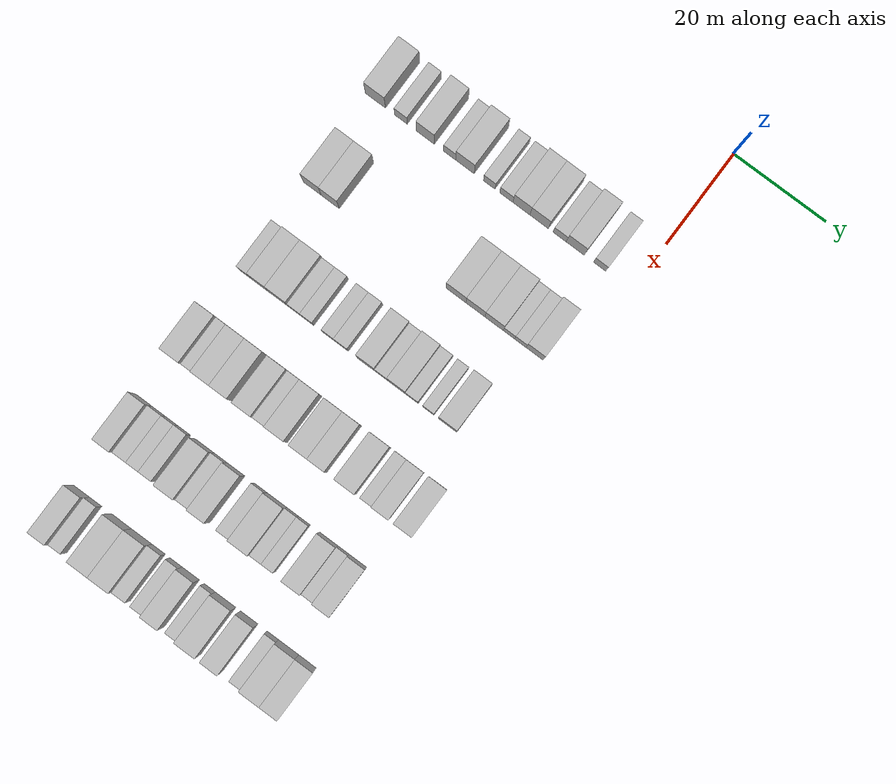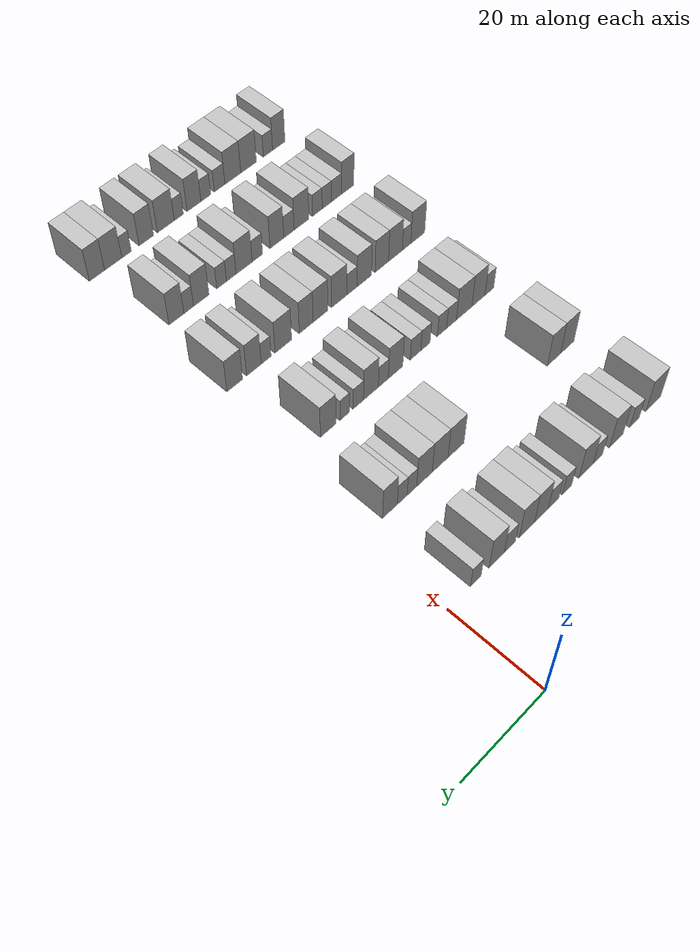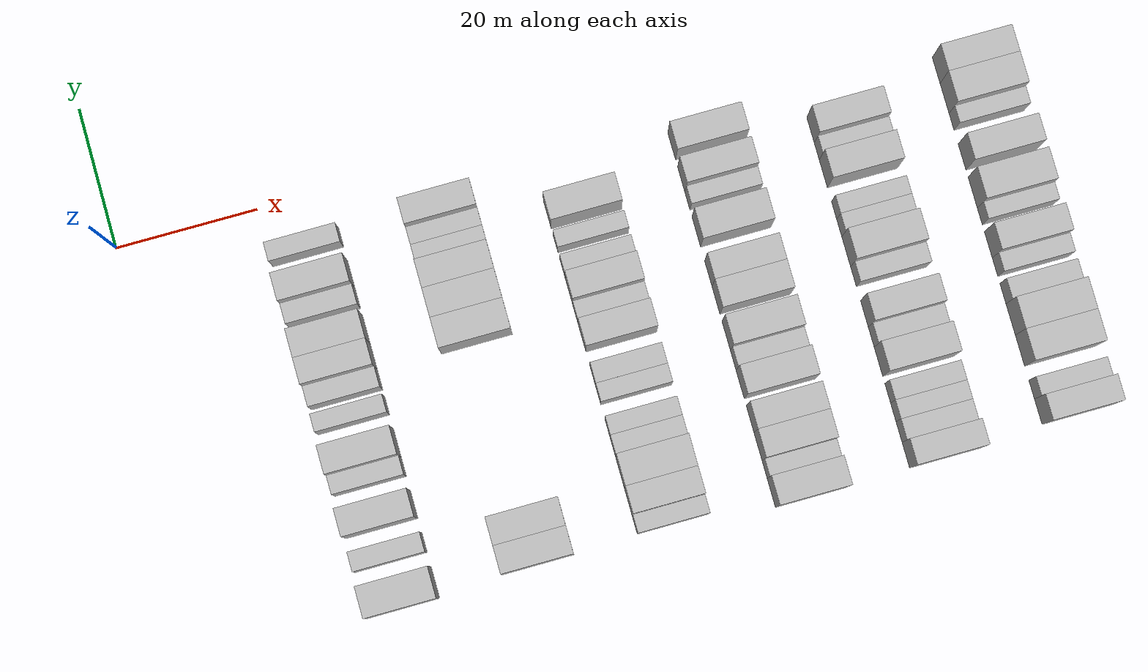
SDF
<sdf version="1.6">
 <world name="default">
  <model name="building_68">
   <static>1</static>
   <pose>25.0000 -55.7402 0 0.000000 0.000000 0.000000</pose>
   <link name="link">
    <pose>0 0 4.50 0 0 0</pose>
    <collision name="collision"><geometry><box><size>10.0000 4.4121 9.0000</size></box></geometry></collision>
    <visual name="visual">
     <cast_shadows>0</cast_shadows>
     <geometry><box><size>10.0000 4.4121 9.0000</size></box></geometry>
     <material>
      <script>
       <uri>model://HANNAS_wall/materials/scripts</uri>
       <uri>model://HANNAS_wall/materials/textures</uri>
       <name>vrc/HANNAS_wall</name>
      </script>
     </material>
    </visual>
   </link>
  </model>
  <model name="building_69">
   <static>1</static>
   <pose>25.0000 -50.1586 0 0.000000 0.000000 0.000000</pose>
   <link name="link">
    <pose>0 0 3.00 0 0 0</pose>
    <collision name="collision"><geometry><box><size>10.0000 2.7511 6.0000</size></box></geometry></collision>
    <visual name="visual">
     <cast_shadows>0</cast_shadows>
     <geometry><box><size>10.0000 2.7511 6.0000</size></box></geometry>
     <material>
      <script>
       <uri>model://HANNAS_wall/materials/scripts</uri>
       <uri>model://HANNAS_wall/materials/textures</uri>
       <name>vrc/HANNAS_wall</name>
      </script>
     </material>
    </visual>
   </link>
  </model>
  <model name="building_70">
   <static>1</static>
   <pose>25.0000 -44.8256 0 0.000000 0.000000 0.000000</pose>
   <link name="link">
    <pose>0 0 4.50 0 0 0</pose>
    <collision name="collision"><geometry><box><size>10.0000 3.9150 9.0000</size></box></geometry></collision>
    <visual name="visual">
     <cast_shadows>0</cast_shadows>
     <geometry><box><size>10.0000 3.9150 9.0000</size></box></geometry>
     <material>
      <script>
       <uri>model://HANNAS_wall/materials/scripts</uri>
       <uri>model://HANNAS_wall/materials/textures</uri>
       <name>vrc/HANNAS_wall</name>
      </script>
     </material>
    </visual>
   </link>
  </model>
  <model name="building_71">
   <static>1</static>
   <pose>25.0000 -39.5345 0 0.000000 0.000000 0.000000</pose>
   <link name="link">
    <pose>0 0 3.00 0 0 0</pose>
    <collision name="collision"><geometry><box><size>10.0000 2.6671 6.0000</size></box></geometry></collision>
    <visual name="visual">
     <cast_shadows>0</cast_shadows>
     <geometry><box><size>10.0000 2.6671 6.0000</size></box></geometry>
     <material>
      <script>
       <uri>model://HANNAS_wall/materials/scripts</uri>
       <uri>model://HANNAS_wall/materials/textures</uri>
       <name>vrc/HANNAS_wall</name>
      </script>
     </material>
    </visual>
   </link>
  </model>
  <model name="building_72">
   <static>1</static>
   <pose>25.0000 -36.1994 0 0.000000 0.000000 0.000000</pose>
   <link name="link">
    <pose>0 0 4.50 0 0 0</pose>
    <collision name="collision"><geometry><box><size>10.0000 4.0033 9.0000</size></box></geometry></collision>
    <visual name="visual">
     <cast_shadows>0</cast_shadows>
     <geometry><box><size>10.0000 4.0033 9.0000</size></box></geometry>
     <material>
      <script>
       <uri>model://HANNAS_wall/materials/scripts</uri>
       <uri>model://HANNAS_wall/materials/textures</uri>
       <name>vrc/HANNAS_wall</name>
      </script>
     </material>
    </visual>
   </link>
  </model>
  <model name="building_73">
   <static>1</static>
   <pose>25.0000 -30.9339 0 0.000000 0.000000 0.000000</pose>
   <link name="link">
    <pose>0 0 3.00 0 0 0</pose>
    <collision name="collision"><geometry><box><size>10.0000 2.5276 6.0000</size></box></geometry></collision>
    <visual name="visual">
     <cast_shadows>0</cast_shadows>
     <geometry><box><size>10.0000 2.5276 6.0000</size></box></geometry>
     <material>
      <script>
       <uri>model://HANNAS_wall/materials/scripts</uri>
       <uri>model://HANNAS_wall/materials/textures</uri>
       <name>vrc/HANNAS_wall</name>
      </script>
     </material>
    </visual>
   </link>
  </model>
  <model name="building_74">
   <static>1</static>
   <pose>25.0000 -27.2278 0 0.000000 0.000000 0.000000</pose>
   <link name="link">
    <pose>0 0 3.00 0 0 0</pose>
    <collision name="collision"><geometry><box><size>10.0000 2.8847 6.0000</size></box></geometry></collision>
    <visual name="visual">
     <cast_shadows>0</cast_shadows>
     <geometry><box><size>10.0000 2.8847 6.0000</size></box></geometry>
     <material>
      <script>
       <uri>model://HANNAS_wall/materials/scripts</uri>
       <uri>model://HANNAS_wall/materials/textures</uri>
       <name>vrc/HANNAS_wall</name>
      </script>
     </material>
    </visual>
   </link>
  </model>
  <model name="building_75">
   <static>1</static>
   <pose>25.0000 -23.9499 0 0.000000 0.000000 0.000000</pose>
   <link name="link">
    <pose>0 0 4.50 0 0 0</pose>
    <collision name="collision"><geometry><box><size>10.0000 3.6709 9.0000</size></box></geometry></collision>
    <visual name="visual">
     <cast_shadows>0</cast_shadows>
     <geometry><box><size>10.0000 3.6709 9.0000</size></box></geometry>
     <material>
      <script>
       <uri>model://HANNAS_wall/materials/scripts</uri>
       <uri>model://HANNAS_wall/materials/textures</uri>
       <name>vrc/HANNAS_wall</name>
      </script>
     </material>
    </visual>
   </link>
  </model>
  <model name="building_76">
   <static>1</static>
   <pose>25.0000 -20.0988 0 0.000000 0.000000 0.000000</pose>
   <link name="link">
    <pose>0 0 4.50 0 0 0</pose>
    <collision name="collision"><geometry><box><size>10.0000 4.0313 9.0000</size></box></geometry></collision>
    <visual name="visual">
     <cast_shadows>0</cast_shadows>
     <geometry><box><size>10.0000 4.0313 9.0000</size></box></geometry>
     <material>
      <script>
       <uri>model://HANNAS_wall/materials/scripts</uri>
       <uri>model://HANNAS_wall/materials/textures</uri>
       <name>vrc/HANNAS_wall</name>
      </script>
     </material>
    </visual>
   </link>
  </model>
  <model name="building_77">
   <static>1</static>
   <pose>25.0000 -15.6472 0 0.000000 0.000000 0.000000</pose>
   <link name="link">
    <pose>0 0 3.00 0 0 0</pose>
    <collision name="collision"><geometry><box><size>10.0000 2.8719 6.0000</size></box></geometry></collision>
    <visual name="visual">
     <cast_shadows>0</cast_shadows>
     <geometry><box><size>10.0000 2.8719 6.0000</size></box></geometry>
     <material>
      <script>
       <uri>model://HANNAS_wall/materials/scripts</uri>
       <uri>model://HANNAS_wall/materials/textures</uri>
       <name>vrc/HANNAS_wall</name>
      </script>
     </material>
    </visual>
   </link>
  </model>
  <model name="building_78">
   <static>1</static>
   <pose>25.0000 -12.2532 0 0.000000 0.000000 0.000000</pose>
   <link name="link">
    <pose>0 0 4.50 0 0 0</pose>
    <collision name="collision"><geometry><box><size>10.0000 3.9162 9.0000</size></box></geometry></collision>
    <visual name="visual">
     <cast_shadows>0</cast_shadows>
     <geometry><box><size>10.0000 3.9162 9.0000</size></box></geometry>
     <material>
      <script>
       <uri>model://HANNAS_wall/materials/scripts</uri>
       <uri>model://HANNAS_wall/materials/textures</uri>
       <name>vrc/HANNAS_wall</name>
      </script>
     </material>
    </visual>
   </link>
  </model>
  <model name="building_79">
   <static>1</static>
   <pose>25.0000 -6.9592 0 0.000000 0.000000 0.000000</pose>
   <link name="link">
    <pose>0 0 3.00 0 0 0</pose>
    <collision name="collision"><geometry><box><size>10.0000 2.6719 6.0000</size></box></geometry></collision>
    <visual name="visual">
     <cast_shadows>0</cast_shadows>
     <geometry><box><size>10.0000 2.6719 6.0000</size></box></geometry>
     <material>
      <script>
       <uri>model://HANNAS_wall/materials/scripts</uri>
       <uri>model://HANNAS_wall/materials/textures</uri>
       <name>vrc/HANNAS_wall</name>
      </script>
     </material>
    </visual>
   </link>
  </model>
  <model name="building_232">
   <static>1</static>
   <pose>44.0000 -55.2480 0 0.000000 0.000000 0.000000</pose>
   <link name="link">
    <pose>0 0 4.50 0 0 0</pose>
    <collision name="collision"><geometry><box><size>10.0000 3.9118 9.0000</size></box></geometry></collision>
    <visual name="visual">
     <cast_shadows>0</cast_shadows>
     <geometry><box><size>10.0000 3.9118 9.0000</size></box></geometry>
     <material>
      <script>
       <uri>model://HANNAS_wall/materials/scripts</uri>
       <uri>model://HANNAS_wall/materials/textures</uri>
       <name>vrc/HANNAS_wall</name>
      </script>
     </material>
    </visual>
   </link>
  </model>
  <model name="building_233">
   <static>1</static>
   <pose>44.0000 -51.3264 0 0.000000 0.000000 0.000000</pose>
   <link name="link">
    <pose>0 0 4.50 0 0 0</pose>
    <collision name="collision"><geometry><box><size>10.0000 3.9314 9.0000</size></box></geometry></collision>
    <visual name="visual">
     <cast_shadows>0</cast_shadows>
     <geometry><box><size>10.0000 3.9314 9.0000</size></box></geometry>
     <material>
      <script>
       <uri>model://HANNAS_wall/materials/scripts</uri>
       <uri>model://HANNAS_wall/materials/textures</uri>
       <name>vrc/HANNAS_wall</name>
      </script>
     </material>
    </visual>
   </link>
  </model>
  <model name="building_234">
   <static>1</static>
   <pose>44.0000 -23.9639 0 0.000000 0.000000 0.000000</pose>
   <link name="link">
    <pose>0 0 4.50 0 0 0</pose>
    <collision name="collision"><geometry><box><size>10.0000 4.2645 9.0000</size></box></geometry></collision>
    <visual name="visual">
     <cast_shadows>0</cast_shadows>
     <geometry><box><size>10.0000 4.2645 9.0000</size></box></geometry>
     <material>
      <script>
       <uri>model://HANNAS_wall/materials/scripts</uri>
       <uri>model://HANNAS_wall/materials/textures</uri>
       <name>vrc/HANNAS_wall</name>
      </script>
     </material>
    </visual>
   </link>
  </model>
  <model name="building_235">
   <static>1</static>
   <pose>44.0000 -19.7783 0 0.000000 0.000000 0.000000</pose>
   <link name="link">
    <pose>0 0 4.50 0 0 0</pose>
    <collision name="collision"><geometry><box><size>10.0000 4.1068 9.0000</size></box></geometry></collision>
    <visual name="visual">
     <cast_shadows>0</cast_shadows>
     <geometry><box><size>10.0000 4.1068 9.0000</size></box></geometry>
     <material>
      <script>
       <uri>model://HANNAS_wall/materials/scripts</uri>
       <uri>model://HANNAS_wall/materials/textures</uri>
       <name>vrc/HANNAS_wall</name>
      </script>
     </material>
    </visual>
   </link>
  </model>
  <model name="building_236">
   <static>1</static>
   <pose>44.0000 -15.7215 0 0.000000 0.000000 0.000000</pose>
   <link name="link">
    <pose>0 0 4.50 0 0 0</pose>
    <collision name="collision"><geometry><box><size>10.0000 4.0069 9.0000</size></box></geometry></collision>
    <visual name="visual">
     <cast_shadows>0</cast_shadows>
     <geometry><box><size>10.0000 4.0069 9.0000</size></box></geometry>
     <material>
      <script>
       <uri>model://HANNAS_wall/materials/scripts</uri>
       <uri>model://HANNAS_wall/materials/textures</uri>
       <name>vrc/HANNAS_wall</name>
      </script>
     </material>
    </visual>
   </link>
  </model>
  <model name="building_237">
   <static>1</static>
   <pose>44.0000 -12.4966 0 0.000000 0.000000 0.000000</pose>
   <link name="link">
    <pose>0 0 3.00 0 0 0</pose>
    <collision name="collision"><geometry><box><size>10.0000 2.4429 6.0000</size></box></geometry></collision>
    <visual name="visual">
     <cast_shadows>0</cast_shadows>
     <geometry><box><size>10.0000 2.4429 6.0000</size></box></geometry>
     <material>
      <script>
       <uri>model://HANNAS_wall/materials/scripts</uri>
       <uri>model://HANNAS_wall/materials/textures</uri>
       <name>vrc/HANNAS_wall</name>
      </script>
     </material>
    </visual>
   </link>
  </model>
  <model name="building_238">
   <static>1</static>
   <pose>44.0000 -10.0319 0 0.000000 0.000000 0.000000</pose>
   <link name="link">
    <pose>0 0 3.00 0 0 0</pose>
    <collision name="collision"><geometry><box><size>10.0000 2.4865 6.0000</size></box></geometry></collision>
    <visual name="visual">
     <cast_shadows>0</cast_shadows>
     <geometry><box><size>10.0000 2.4865 6.0000</size></box></geometry>
     <material>
      <script>
       <uri>model://HANNAS_wall/materials/scripts</uri>
       <uri>model://HANNAS_wall/materials/textures</uri>
       <name>vrc/HANNAS_wall</name>
      </script>
     </material>
    </visual>
   </link>
  </model>
  <model name="building_239">
   <static>1</static>
   <pose>44.0000 -6.9526 0 0.000000 0.000000 0.000000</pose>
   <link name="link">
    <pose>0 0 4.50 0 0 0</pose>
    <collision name="collision"><geometry><box><size>10.0000 3.6723 9.0000</size></box></geometry></collision>
    <visual name="visual">
     <cast_shadows>0</cast_shadows>
     <geometry><box><size>10.0000 3.6723 9.0000</size></box></geometry>
     <material>
      <script>
       <uri>model://HANNAS_wall/materials/scripts</uri>
       <uri>model://HANNAS_wall/materials/textures</uri>
       <name>vrc/HANNAS_wall</name>
      </script>
     </material>
    </visual>
   </link>
  </model>
  <model name="building_401">
   <static>1</static>
   <pose>63.0000 -55.5531 0 0.000000 0.000000 0.000000</pose>
   <link name="link">
    <pose>0 0 3.00 0 0 0</pose>
    <collision name="collision"><geometry><box><size>10.0000 2.5824 6.0000</size></box></geometry></collision>
    <visual name="visual">
     <cast_shadows>0</cast_shadows>
     <geometry><box><size>10.0000 2.5824 6.0000</size></box></geometry>
     <material>
      <script>
       <uri>model://HANNAS_wall/materials/scripts</uri>
       <uri>model://HANNAS_wall/materials/textures</uri>
       <name>vrc/HANNAS_wall</name>
      </script>
     </material>
    </visual>
   </link>
  </model>
  <model name="building_402">
   <static>1</static>
   <pose>63.0000 -52.3521 0 0.000000 0.000000 0.000000</pose>
   <link name="link">
    <pose>0 0 4.50 0 0 0</pose>
    <collision name="collision"><geometry><box><size>10.0000 3.8197 9.0000</size></box></geometry></collision>
    <visual name="visual">
     <cast_shadows>0</cast_shadows>
     <geometry><box><size>10.0000 3.8197 9.0000</size></box></geometry>
     <material>
      <script>
       <uri>model://HANNAS_wall/materials/scripts</uri>
       <uri>model://HANNAS_wall/materials/textures</uri>
       <name>vrc/HANNAS_wall</name>
      </script>
     </material>
    </visual>
   </link>
  </model>
  <model name="building_403">
   <static>1</static>
   <pose>63.0000 -48.2206 0 0.000000 0.000000 0.000000</pose>
   <link name="link">
    <pose>0 0 4.50 0 0 0</pose>
    <collision name="collision"><geometry><box><size>10.0000 4.4433 9.0000</size></box></geometry></collision>
    <visual name="visual">
     <cast_shadows>0</cast_shadows>
     <geometry><box><size>10.0000 4.4433 9.0000</size></box></geometry>
     <material>
      <script>
       <uri>model://HANNAS_wall/materials/scripts</uri>
       <uri>model://HANNAS_wall/materials/textures</uri>
       <name>vrc/HANNAS_wall</name>
      </script>
     </material>
    </visual>
   </link>
  </model>
  <model name="building_404">
   <static>1</static>
   <pose>63.0000 -44.6166 0 0.000000 0.000000 0.000000</pose>
   <link name="link">
    <pose>0 0 3.00 0 0 0</pose>
    <collision name="collision"><geometry><box><size>10.0000 2.7647 6.0000</size></box></geometry></collision>
    <visual name="visual">
     <cast_shadows>0</cast_shadows>
     <geometry><box><size>10.0000 2.7647 6.0000</size></box></geometry>
     <material>
      <script>
       <uri>model://HANNAS_wall/materials/scripts</uri>
       <uri>model://HANNAS_wall/materials/textures</uri>
       <name>vrc/HANNAS_wall</name>
      </script>
     </material>
    </visual>
   </link>
  </model>
  <model name="building_405">
   <static>1</static>
   <pose>63.0000 -41.9248 0 0.000000 0.000000 0.000000</pose>
   <link name="link">
    <pose>0 0 3.00 0 0 0</pose>
    <collision name="collision"><geometry><box><size>10.0000 2.6190 6.0000</size></box></geometry></collision>
    <visual name="visual">
     <cast_shadows>0</cast_shadows>
     <geometry><box><size>10.0000 2.6190 6.0000</size></box></geometry>
     <material>
      <script>
       <uri>model://HANNAS_wall/materials/scripts</uri>
       <uri>model://HANNAS_wall/materials/textures</uri>
       <name>vrc/HANNAS_wall</name>
      </script>
     </material>
    </visual>
   </link>
  </model>
  <model name="building_406">
   <static>1</static>
   <pose>63.0000 -37.3234 0 0.000000 0.000000 0.000000</pose>
   <link name="link">
    <pose>0 0 3.00 0 0 0</pose>
    <collision name="collision"><geometry><box><size>10.0000 2.5839 6.0000</size></box></geometry></collision>
    <visual name="visual">
     <cast_shadows>0</cast_shadows>
     <geometry><box><size>10.0000 2.5839 6.0000</size></box></geometry>
     <material>
      <script>
       <uri>model://HANNAS_wall/materials/scripts</uri>
       <uri>model://HANNAS_wall/materials/textures</uri>
       <name>vrc/HANNAS_wall</name>
      </script>
     </material>
    </visual>
   </link>
  </model>
  <model name="building_407">
   <static>1</static>
   <pose>63.0000 -34.5744 0 0.000000 0.000000 0.000000</pose>
   <link name="link">
    <pose>0 0 3.00 0 0 0</pose>
    <collision name="collision"><geometry><box><size>10.0000 2.9140 6.0000</size></box></geometry></collision>
    <visual name="visual">
     <cast_shadows>0</cast_shadows>
     <geometry><box><size>10.0000 2.9140 6.0000</size></box></geometry>
     <material>
      <script>
       <uri>model://HANNAS_wall/materials/scripts</uri>
       <uri>model://HANNAS_wall/materials/textures</uri>
       <name>vrc/HANNAS_wall</name>
      </script>
     </material>
    </visual>
   </link>
  </model>
  <model name="building_408">
   <static>1</static>
   <pose>63.0000 -29.1804 0 0.000000 0.000000 0.000000</pose>
   <link name="link">
    <pose>0 0 4.50 0 0 0</pose>
    <collision name="collision"><geometry><box><size>10.0000 3.8740 9.0000</size></box></geometry></collision>
    <visual name="visual">
     <cast_shadows>0</cast_shadows>
     <geometry><box><size>10.0000 3.8740 9.0000</size></box></geometry>
     <material>
      <script>
       <uri>model://HANNAS_wall/materials/scripts</uri>
       <uri>model://HANNAS_wall/materials/textures</uri>
       <name>vrc/HANNAS_wall</name>
      </script>
     </material>
    </visual>
   </link>
  </model>
  <model name="building_409">
   <static>1</static>
   <pose>63.0000 -25.8922 0 0.000000 0.000000 0.000000</pose>
   <link name="link">
    <pose>0 0 3.00 0 0 0</pose>
    <collision name="collision"><geometry><box><size>10.0000 2.7024 6.0000</size></box></geometry></collision>
    <visual name="visual">
     <cast_shadows>0</cast_shadows>
     <geometry><box><size>10.0000 2.7024 6.0000</size></box></geometry>
     <material>
      <script>
       <uri>model://HANNAS_wall/materials/scripts</uri>
       <uri>model://HANNAS_wall/materials/textures</uri>
       <name>vrc/HANNAS_wall</name>
      </script>
     </material>
    </visual>
   </link>
  </model>
  <model name="building_410">
   <static>1</static>
   <pose>63.0000 -22.5969 0 0.000000 0.000000 0.000000</pose>
   <link name="link">
    <pose>0 0 4.50 0 0 0</pose>
    <collision name="collision"><geometry><box><size>10.0000 3.8882 9.0000</size></box></geometry></collision>
    <visual name="visual">
     <cast_shadows>0</cast_shadows>
     <geometry><box><size>10.0000 3.8882 9.0000</size></box></geometry>
     <material>
      <script>
       <uri>model://HANNAS_wall/materials/scripts</uri>
       <uri>model://HANNAS_wall/materials/textures</uri>
       <name>vrc/HANNAS_wall</name>
      </script>
     </material>
    </visual>
   </link>
  </model>
  <model name="building_411">
   <static>1</static>
   <pose>63.0000 -19.3091 0 0.000000 0.000000 0.000000</pose>
   <link name="link">
    <pose>0 0 3.00 0 0 0</pose>
    <collision name="collision"><geometry><box><size>10.0000 2.6875 6.0000</size></box></geometry></collision>
    <visual name="visual">
     <cast_shadows>0</cast_shadows>
     <geometry><box><size>10.0000 2.6875 6.0000</size></box></geometry>
     <material>
      <script>
       <uri>model://HANNAS_wall/materials/scripts</uri>
       <uri>model://HANNAS_wall/materials/textures</uri>
       <name>vrc/HANNAS_wall</name>
      </script>
     </material>
    </visual>
   </link>
  </model>
  <model name="building_412">
   <static>1</static>
   <pose>63.0000 -15.7599 0 0.000000 0.000000 0.000000</pose>
   <link name="link">
    <pose>0 0 3.00 0 0 0</pose>
    <collision name="collision"><geometry><box><size>10.0000 2.4109 6.0000</size></box></geometry></collision>
    <visual name="visual">
     <cast_shadows>0</cast_shadows>
     <geometry><box><size>10.0000 2.4109 6.0000</size></box></geometry>
     <material>
      <script>
       <uri>model://HANNAS_wall/materials/scripts</uri>
       <uri>model://HANNAS_wall/materials/textures</uri>
       <name>vrc/HANNAS_wall</name>
      </script>
     </material>
    </visual>
   </link>
  </model>
  <model name="building_413">
   <static>1</static>
   <pose>63.0000 -11.5891 0 0.000000 0.000000 0.000000</pose>
   <link name="link">
    <pose>0 0 4.50 0 0 0</pose>
    <collision name="collision"><geometry><box><size>10.0000 3.9307 9.0000</size></box></geometry></collision>
    <visual name="visual">
     <cast_shadows>0</cast_shadows>
     <geometry><box><size>10.0000 3.9307 9.0000</size></box></geometry>
     <material>
      <script>
       <uri>model://HANNAS_wall/materials/scripts</uri>
       <uri>model://HANNAS_wall/materials/textures</uri>
       <name>vrc/HANNAS_wall</name>
      </script>
     </material>
    </visual>
   </link>
  </model>
  <model name="building_573">
   <static>1</static>
   <pose>82.0000 -56.3860 0 0.000000 0.000000 0.000000</pose>
   <link name="link">
    <pose>0 0 4.50 0 0 0</pose>
    <collision name="collision"><geometry><box><size>10.0000 4.0861 9.0000</size></box></geometry></collision>
    <visual name="visual">
     <cast_shadows>0</cast_shadows>
     <geometry><box><size>10.0000 4.0861 9.0000</size></box></geometry>
     <material>
      <script>
       <uri>model://HANNAS_wall/materials/scripts</uri>
       <uri>model://HANNAS_wall/materials/textures</uri>
       <name>vrc/HANNAS_wall</name>
      </script>
     </material>
    </visual>
   </link>
  </model>
  <model name="building_574">
   <static>1</static>
   <pose>82.0000 -53.1052 0 0.000000 0.000000 0.000000</pose>
   <link name="link">
    <pose>0 0 3.00 0 0 0</pose>
    <collision name="collision"><geometry><box><size>10.0000 2.4753 6.0000</size></box></geometry></collision>
    <visual name="visual">
     <cast_shadows>0</cast_shadows>
     <geometry><box><size>10.0000 2.4753 6.0000</size></box></geometry>
     <material>
      <script>
       <uri>model://HANNAS_wall/materials/scripts</uri>
       <uri>model://HANNAS_wall/materials/textures</uri>
       <name>vrc/HANNAS_wall</name>
      </script>
     </material>
    </visual>
   </link>
  </model>
  <model name="building_575">
   <static>1</static>
   <pose>82.0000 -49.8909 0 0.000000 0.000000 0.000000</pose>
   <link name="link">
    <pose>0 0 4.50 0 0 0</pose>
    <collision name="collision"><geometry><box><size>10.0000 3.9533 9.0000</size></box></geometry></collision>
    <visual name="visual">
     <cast_shadows>0</cast_shadows>
     <geometry><box><size>10.0000 3.9533 9.0000</size></box></geometry>
     <material>
      <script>
       <uri>model://HANNAS_wall/materials/scripts</uri>
       <uri>model://HANNAS_wall/materials/textures</uri>
       <name>vrc/HANNAS_wall</name>
      </script>
     </material>
    </visual>
   </link>
  </model>
  <model name="building_576">
   <static>1</static>
   <pose>82.0000 -46.0078 0 0.000000 0.000000 0.000000</pose>
   <link name="link">
    <pose>0 0 4.50 0 0 0</pose>
    <collision name="collision"><geometry><box><size>10.0000 3.8130 9.0000</size></box></geometry></collision>
    <visual name="visual">
     <cast_shadows>0</cast_shadows>
     <geometry><box><size>10.0000 3.8130 9.0000</size></box></geometry>
     <material>
      <script>
       <uri>model://HANNAS_wall/materials/scripts</uri>
       <uri>model://HANNAS_wall/materials/textures</uri>
       <name>vrc/HANNAS_wall</name>
      </script>
     </material>
    </visual>
   </link>
  </model>
  <model name="building_577">
   <static>1</static>
   <pose>82.0000 -41.0947 0 0.000000 0.000000 0.000000</pose>
   <link name="link">
    <pose>0 0 4.50 0 0 0</pose>
    <collision name="collision"><geometry><box><size>10.0000 4.0131 9.0000</size></box></geometry></collision>
    <visual name="visual">
     <cast_shadows>0</cast_shadows>
     <geometry><box><size>10.0000 4.0131 9.0000</size></box></geometry>
     <material>
      <script>
       <uri>model://HANNAS_wall/materials/scripts</uri>
       <uri>model://HANNAS_wall/materials/textures</uri>
       <name>vrc/HANNAS_wall</name>
      </script>
     </material>
    </visual>
   </link>
  </model>
  <model name="building_578">
   <static>1</static>
   <pose>82.0000 -37.6748 0 0.000000 0.000000 0.000000</pose>
   <link name="link">
    <pose>0 0 3.00 0 0 0</pose>
    <collision name="collision"><geometry><box><size>10.0000 2.8266 6.0000</size></box></geometry></collision>
    <visual name="visual">
     <cast_shadows>0</cast_shadows>
     <geometry><box><size>10.0000 2.8266 6.0000</size></box></geometry>
     <material>
      <script>
       <uri>model://HANNAS_wall/materials/scripts</uri>
       <uri>model://HANNAS_wall/materials/textures</uri>
       <name>vrc/HANNAS_wall</name>
      </script>
     </material>
    </visual>
   </link>
  </model>
  <model name="building_579">
   <static>1</static>
   <pose>82.0000 -34.1689 0 0.000000 0.000000 0.000000</pose>
   <link name="link">
    <pose>0 0 4.50 0 0 0</pose>
    <collision name="collision"><geometry><box><size>10.0000 4.1852 9.0000</size></box></geometry></collision>
    <visual name="visual">
     <cast_shadows>0</cast_shadows>
     <geometry><box><size>10.0000 4.1852 9.0000</size></box></geometry>
     <material>
      <script>
       <uri>model://HANNAS_wall/materials/scripts</uri>
       <uri>model://HANNAS_wall/materials/textures</uri>
       <name>vrc/HANNAS_wall</name>
      </script>
     </material>
    </visual>
   </link>
  </model>
  <model name="building_580">
   <static>1</static>
   <pose>82.0000 -29.1139 0 0.000000 0.000000 0.000000</pose>
   <link name="link">
    <pose>0 0 4.50 0 0 0</pose>
    <collision name="collision"><geometry><box><size>10.0000 3.9250 9.0000</size></box></geometry></collision>
    <visual name="visual">
     <cast_shadows>0</cast_shadows>
     <geometry><box><size>10.0000 3.9250 9.0000</size></box></geometry>
     <material>
      <script>
       <uri>model://HANNAS_wall/materials/scripts</uri>
       <uri>model://HANNAS_wall/materials/textures</uri>
       <name>vrc/HANNAS_wall</name>
      </script>
     </material>
    </visual>
   </link>
  </model>
  <model name="building_581">
   <static>1</static>
   <pose>82.0000 -25.3151 0 0.000000 0.000000 0.000000</pose>
   <link name="link">
    <pose>0 0 4.50 0 0 0</pose>
    <collision name="collision"><geometry><box><size>10.0000 3.6726 9.0000</size></box></geometry></collision>
    <visual name="visual">
     <cast_shadows>0</cast_shadows>
     <geometry><box><size>10.0000 3.6726 9.0000</size></box></geometry>
     <material>
      <script>
       <uri>model://HANNAS_wall/materials/scripts</uri>
       <uri>model://HANNAS_wall/materials/textures</uri>
       <name>vrc/HANNAS_wall</name>
      </script>
     </material>
    </visual>
   </link>
  </model>
  <model name="building_582">
   <static>1</static>
   <pose>82.0000 -19.3186 0 0.000000 0.000000 0.000000</pose>
   <link name="link">
    <pose>0 0 4.50 0 0 0</pose>
    <collision name="collision"><geometry><box><size>10.0000 4.3204 9.0000</size></box></geometry></collision>
    <visual name="visual">
     <cast_shadows>0</cast_shadows>
     <geometry><box><size>10.0000 4.3204 9.0000</size></box></geometry>
     <material>
      <script>
       <uri>model://HANNAS_wall/materials/scripts</uri>
       <uri>model://HANNAS_wall/materials/textures</uri>
       <name>vrc/HANNAS_wall</name>
      </script>
     </material>
    </visual>
   </link>
  </model>
  <model name="building_583">
   <static>1</static>
   <pose>82.0000 -14.8968 0 0.000000 0.000000 0.000000</pose>
   <link name="link">
    <pose>0 0 3.00 0 0 0</pose>
    <collision name="collision"><geometry><box><size>10.0000 2.5232 6.0000</size></box></geometry></collision>
    <visual name="visual">
     <cast_shadows>0</cast_shadows>
     <geometry><box><size>10.0000 2.5232 6.0000</size></box></geometry>
     <material>
      <script>
       <uri>model://HANNAS_wall/materials/scripts</uri>
       <uri>model://HANNAS_wall/materials/textures</uri>
       <name>vrc/HANNAS_wall</name>
      </script>
     </material>
    </visual>
   </link>
  </model>
  <model name="building_584">
   <static>1</static>
   <pose>82.0000 -11.7905 0 0.000000 0.000000 0.000000</pose>
   <link name="link">
    <pose>0 0 4.50 0 0 0</pose>
    <collision name="collision"><geometry><box><size>10.0000 3.6894 9.0000</size></box></geometry></collision>
    <visual name="visual">
     <cast_shadows>0</cast_shadows>
     <geometry><box><size>10.0000 3.6894 9.0000</size></box></geometry>
     <material>
      <script>
       <uri>model://HANNAS_wall/materials/scripts</uri>
       <uri>model://HANNAS_wall/materials/textures</uri>
       <name>vrc/HANNAS_wall</name>
      </script>
     </material>
    </visual>
   </link>
  </model>
  <model name="building_585">
   <static>1</static>
   <pose>82.0000 -6.9972 0 0.000000 0.000000 0.000000</pose>
   <link name="link">
    <pose>0 0 4.50 0 0 0</pose>
    <collision name="collision"><geometry><box><size>10.0000 3.8974 9.0000</size></box></geometry></collision>
    <visual name="visual">
     <cast_shadows>0</cast_shadows>
     <geometry><box><size>10.0000 3.8974 9.0000</size></box></geometry>
     <material>
      <script>
       <uri>model://HANNAS_wall/materials/scripts</uri>
       <uri>model://HANNAS_wall/materials/textures</uri>
       <name>vrc/HANNAS_wall</name>
      </script>
     </material>
    </visual>
   </link>
  </model>
  <model name="building_753">
   <static>1</static>
   <pose>101.0000 -56.4078 0 0.000000 0.000000 0.000000</pose>
   <link name="link">
    <pose>0 0 4.50 0 0 0</pose>
    <collision name="collision"><geometry><box><size>10.0000 3.6185 9.0000</size></box></geometry></collision>
    <visual name="visual">
     <cast_shadows>0</cast_shadows>
     <geometry><box><size>10.0000 3.6185 9.0000</size></box></geometry>
     <material>
      <script>
       <uri>model://HANNAS_wall/materials/scripts</uri>
       <uri>model://HANNAS_wall/materials/textures</uri>
       <name>vrc/HANNAS_wall</name>
      </script>
     </material>
    </visual>
   </link>
  </model>
  <model name="building_754">
   <static>1</static>
   <pose>101.0000 -53.1337 0 0.000000 0.000000 0.000000</pose>
   <link name="link">
    <pose>0 0 3.00 0 0 0</pose>
    <collision name="collision"><geometry><box><size>10.0000 2.9297 6.0000</size></box></geometry></collision>
    <visual name="visual">
     <cast_shadows>0</cast_shadows>
     <geometry><box><size>10.0000 2.9297 6.0000</size></box></geometry>
     <material>
      <script>
       <uri>model://HANNAS_wall/materials/scripts</uri>
       <uri>model://HANNAS_wall/materials/textures</uri>
       <name>vrc/HANNAS_wall</name>
      </script>
     </material>
    </visual>
   </link>
  </model>
  <model name="building_755">
   <static>1</static>
   <pose>101.0000 -50.3467 0 0.000000 0.000000 0.000000</pose>
   <link name="link">
    <pose>0 0 3.00 0 0 0</pose>
    <collision name="collision"><geometry><box><size>10.0000 2.6442 6.0000</size></box></geometry></collision>
    <visual name="visual">
     <cast_shadows>0</cast_shadows>
     <geometry><box><size>10.0000 2.6442 6.0000</size></box></geometry>
     <material>
      <script>
       <uri>model://HANNAS_wall/materials/scripts</uri>
       <uri>model://HANNAS_wall/materials/textures</uri>
       <name>vrc/HANNAS_wall</name>
      </script>
     </material>
    </visual>
   </link>
  </model>
  <model name="building_756">
   <static>1</static>
   <pose>101.0000 -47.6381 0 0.000000 0.000000 0.000000</pose>
   <link name="link">
    <pose>0 0 3.00 0 0 0</pose>
    <collision name="collision"><geometry><box><size>10.0000 2.7731 6.0000</size></box></geometry></collision>
    <visual name="visual">
     <cast_shadows>0</cast_shadows>
     <geometry><box><size>10.0000 2.7731 6.0000</size></box></geometry>
     <material>
      <script>
       <uri>model://HANNAS_wall/materials/scripts</uri>
       <uri>model://HANNAS_wall/materials/textures</uri>
       <name>vrc/HANNAS_wall</name>
      </script>
     </material>
    </visual>
   </link>
  </model>
  <model name="building_757">
   <static>1</static>
   <pose>101.0000 -43.1825 0 0.000000 0.000000 0.000000</pose>
   <link name="link">
    <pose>0 0 4.50 0 0 0</pose>
    <collision name="collision"><geometry><box><size>10.0000 4.1383 9.0000</size></box></geometry></collision>
    <visual name="visual">
     <cast_shadows>0</cast_shadows>
     <geometry><box><size>10.0000 4.1383 9.0000</size></box></geometry>
     <material>
      <script>
       <uri>model://HANNAS_wall/materials/scripts</uri>
       <uri>model://HANNAS_wall/materials/textures</uri>
       <name>vrc/HANNAS_wall</name>
      </script>
     </material>
    </visual>
   </link>
  </model>
  <model name="building_758">
   <static>1</static>
   <pose>101.0000 -39.6845 0 0.000000 0.000000 0.000000</pose>
   <link name="link">
    <pose>0 0 3.00 0 0 0</pose>
    <collision name="collision"><geometry><box><size>10.0000 2.8576 6.0000</size></box></geometry></collision>
    <visual name="visual">
     <cast_shadows>0</cast_shadows>
     <geometry><box><size>10.0000 2.8576 6.0000</size></box></geometry>
     <material>
      <script>
       <uri>model://HANNAS_wall/materials/scripts</uri>
       <uri>model://HANNAS_wall/materials/textures</uri>
       <name>vrc/HANNAS_wall</name>
      </script>
     </material>
    </visual>
   </link>
  </model>
  <model name="building_759">
   <static>1</static>
   <pose>101.0000 -36.3620 0 0.000000 0.000000 0.000000</pose>
   <link name="link">
    <pose>0 0 4.50 0 0 0</pose>
    <collision name="collision"><geometry><box><size>10.0000 3.7876 9.0000</size></box></geometry></collision>
    <visual name="visual">
     <cast_shadows>0</cast_shadows>
     <geometry><box><size>10.0000 3.7876 9.0000</size></box></geometry>
     <material>
      <script>
       <uri>model://HANNAS_wall/materials/scripts</uri>
       <uri>model://HANNAS_wall/materials/textures</uri>
       <name>vrc/HANNAS_wall</name>
      </script>
     </material>
    </visual>
   </link>
  </model>
  <model name="building_760">
   <static>1</static>
   <pose>101.0000 -31.0564 0 0.000000 0.000000 0.000000</pose>
   <link name="link">
    <pose>0 0 3.00 0 0 0</pose>
    <collision name="collision"><geometry><box><size>10.0000 2.8236 6.0000</size></box></geometry></collision>
    <visual name="visual">
     <cast_shadows>0</cast_shadows>
     <geometry><box><size>10.0000 2.8236 6.0000</size></box></geometry>
     <material>
      <script>
       <uri>model://HANNAS_wall/materials/scripts</uri>
       <uri>model://HANNAS_wall/materials/textures</uri>
       <name>vrc/HANNAS_wall</name>
      </script>
     </material>
    </visual>
   </link>
  </model>
  <model name="building_761">
   <static>1</static>
   <pose>101.0000 -27.4968 0 0.000000 0.000000 0.000000</pose>
   <link name="link">
    <pose>0 0 4.50 0 0 0</pose>
    <collision name="collision"><geometry><box><size>10.0000 4.2955 9.0000</size></box></geometry></collision>
    <visual name="visual">
     <cast_shadows>0</cast_shadows>
     <geometry><box><size>10.0000 4.2955 9.0000</size></box></geometry>
     <material>
      <script>
       <uri>model://HANNAS_wall/materials/scripts</uri>
       <uri>model://HANNAS_wall/materials/textures</uri>
       <name>vrc/HANNAS_wall</name>
      </script>
     </material>
    </visual>
   </link>
  </model>
  <model name="building_762">
   <static>1</static>
   <pose>101.0000 -24.0912 0 0.000000 0.000000 0.000000</pose>
   <link name="link">
    <pose>0 0 3.00 0 0 0</pose>
    <collision name="collision"><geometry><box><size>10.0000 2.5158 6.0000</size></box></geometry></collision>
    <visual name="visual">
     <cast_shadows>0</cast_shadows>
     <geometry><box><size>10.0000 2.5158 6.0000</size></box></geometry>
     <material>
      <script>
       <uri>model://HANNAS_wall/materials/scripts</uri>
       <uri>model://HANNAS_wall/materials/textures</uri>
       <name>vrc/HANNAS_wall</name>
      </script>
     </material>
    </visual>
   </link>
  </model>
  <model name="building_763">
   <static>1</static>
   <pose>101.0000 -21.5613 0 0.000000 0.000000 0.000000</pose>
   <link name="link">
    <pose>0 0 3.00 0 0 0</pose>
    <collision name="collision"><geometry><box><size>10.0000 2.5440 6.0000</size></box></geometry></collision>
    <visual name="visual">
     <cast_shadows>0</cast_shadows>
     <geometry><box><size>10.0000 2.5440 6.0000</size></box></geometry>
     <material>
      <script>
       <uri>model://HANNAS_wall/materials/scripts</uri>
       <uri>model://HANNAS_wall/materials/textures</uri>
       <name>vrc/HANNAS_wall</name>
      </script>
     </material>
    </visual>
   </link>
  </model>
  <model name="building_764">
   <static>1</static>
   <pose>101.0000 -16.3009 0 0.000000 0.000000 0.000000</pose>
   <link name="link">
    <pose>0 0 4.50 0 0 0</pose>
    <collision name="collision"><geometry><box><size>10.0000 3.9767 9.0000</size></box></geometry></collision>
    <visual name="visual">
     <cast_shadows>0</cast_shadows>
     <geometry><box><size>10.0000 3.9767 9.0000</size></box></geometry>
     <material>
      <script>
       <uri>model://HANNAS_wall/materials/scripts</uri>
       <uri>model://HANNAS_wall/materials/textures</uri>
       <name>vrc/HANNAS_wall</name>
      </script>
     </material>
    </visual>
   </link>
  </model>
  <model name="building_765">
   <static>1</static>
   <pose>101.0000 -13.0902 0 0.000000 0.000000 0.000000</pose>
   <link name="link">
    <pose>0 0 3.00 0 0 0</pose>
    <collision name="collision"><geometry><box><size>10.0000 2.4447 6.0000</size></box></geometry></collision>
    <visual name="visual">
     <cast_shadows>0</cast_shadows>
     <geometry><box><size>10.0000 2.4447 6.0000</size></box></geometry>
     <material>
      <script>
       <uri>model://HANNAS_wall/materials/scripts</uri>
       <uri>model://HANNAS_wall/materials/textures</uri>
       <name>vrc/HANNAS_wall</name>
      </script>
     </material>
    </visual>
   </link>
  </model>
  <model name="building_766">
   <static>1</static>
   <pose>101.0000 -9.9941 0 0.000000 0.000000 0.000000</pose>
   <link name="link">
    <pose>0 0 4.50 0 0 0</pose>
    <collision name="collision"><geometry><box><size>10.0000 3.7475 9.0000</size></box></geometry></collision>
    <visual name="visual">
     <cast_shadows>0</cast_shadows>
     <geometry><box><size>10.0000 3.7475 9.0000</size></box></geometry>
     <material>
      <script>
       <uri>model://HANNAS_wall/materials/scripts</uri>
       <uri>model://HANNAS_wall/materials/textures</uri>
       <name>vrc/HANNAS_wall</name>
      </script>
     </material>
    </visual>
   </link>
  </model>
  <model name="building_921">
   <static>1</static>
   <pose>120.0000 -55.5941 0 0.000000 0.000000 0.000000</pose>
   <link name="link">
    <pose>0 0 4.50 0 0 0</pose>
    <collision name="collision"><geometry><box><size>10.0000 3.6127 9.0000</size></box></geometry></collision>
    <visual name="visual">
     <cast_shadows>0</cast_shadows>
     <geometry><box><size>10.0000 3.6127 9.0000</size></box></geometry>
     <material>
      <script>
       <uri>model://HANNAS_wall/materials/scripts</uri>
       <uri>model://HANNAS_wall/materials/textures</uri>
       <name>vrc/HANNAS_wall</name>
      </script>
     </material>
    </visual>
   </link>
  </model>
  <model name="building_922">
   <static>1</static>
   <pose>120.0000 -52.4604 0 0.000000 0.000000 0.000000</pose>
   <link name="link">
    <pose>0 0 3.00 0 0 0</pose>
    <collision name="collision"><geometry><box><size>10.0000 2.6548 6.0000</size></box></geometry></collision>
    <visual name="visual">
     <cast_shadows>0</cast_shadows>
     <geometry><box><size>10.0000 2.6548 6.0000</size></box></geometry>
     <material>
      <script>
       <uri>model://HANNAS_wall/materials/scripts</uri>
       <uri>model://HANNAS_wall/materials/textures</uri>
       <name>vrc/HANNAS_wall</name>
      </script>
     </material>
    </visual>
   </link>
  </model>
  <model name="building_923">
   <static>1</static>
   <pose>120.0000 -46.9247 0 0.000000 0.000000 0.000000</pose>
   <link name="link">
    <pose>0 0 4.50 0 0 0</pose>
    <collision name="collision"><geometry><box><size>10.0000 4.4166 9.0000</size></box></geometry></collision>
    <visual name="visual">
     <cast_shadows>0</cast_shadows>
     <geometry><box><size>10.0000 4.4166 9.0000</size></box></geometry>
     <material>
      <script>
       <uri>model://HANNAS_wall/materials/scripts</uri>
       <uri>model://HANNAS_wall/materials/textures</uri>
       <name>vrc/HANNAS_wall</name>
      </script>
     </material>
    </visual>
   </link>
  </model>
  <model name="building_924">
   <static>1</static>
   <pose>120.0000 -42.4935 0 0.000000 0.000000 0.000000</pose>
   <link name="link">
    <pose>0 0 4.50 0 0 0</pose>
    <collision name="collision"><geometry><box><size>10.0000 4.4458 9.0000</size></box></geometry></collision>
    <visual name="visual">
     <cast_shadows>0</cast_shadows>
     <geometry><box><size>10.0000 4.4458 9.0000</size></box></geometry>
     <material>
      <script>
       <uri>model://HANNAS_wall/materials/scripts</uri>
       <uri>model://HANNAS_wall/materials/textures</uri>
       <name>vrc/HANNAS_wall</name>
      </script>
     </material>
    </visual>
   </link>
  </model>
  <model name="building_925">
   <static>1</static>
   <pose>120.0000 -38.8109 0 0.000000 0.000000 0.000000</pose>
   <link name="link">
    <pose>0 0 3.00 0 0 0</pose>
    <collision name="collision"><geometry><box><size>10.0000 2.9194 6.0000</size></box></geometry></collision>
    <visual name="visual">
     <cast_shadows>0</cast_shadows>
     <geometry><box><size>10.0000 2.9194 6.0000</size></box></geometry>
     <material>
      <script>
       <uri>model://HANNAS_wall/materials/scripts</uri>
       <uri>model://HANNAS_wall/materials/textures</uri>
       <name>vrc/HANNAS_wall</name>
      </script>
     </material>
    </visual>
   </link>
  </model>
  <model name="building_926">
   <static>1</static>
   <pose>120.0000 -35.0251 0 0.000000 0.000000 0.000000</pose>
   <link name="link">
    <pose>0 0 3.00 0 0 0</pose>
    <collision name="collision"><geometry><box><size>10.0000 2.6521 6.0000</size></box></geometry></collision>
    <visual name="visual">
     <cast_shadows>0</cast_shadows>
     <geometry><box><size>10.0000 2.6521 6.0000</size></box></geometry>
     <material>
      <script>
       <uri>model://HANNAS_wall/materials/scripts</uri>
       <uri>model://HANNAS_wall/materials/textures</uri>
       <name>vrc/HANNAS_wall</name>
      </script>
     </material>
    </visual>
   </link>
  </model>
  <model name="building_927">
   <static>1</static>
   <pose>120.0000 -31.8203 0 0.000000 0.000000 0.000000</pose>
   <link name="link">
    <pose>0 0 4.50 0 0 0</pose>
    <collision name="collision"><geometry><box><size>10.0000 3.7574 9.0000</size></box></geometry></collision>
    <visual name="visual">
     <cast_shadows>0</cast_shadows>
     <geometry><box><size>10.0000 3.7574 9.0000</size></box></geometry>
     <material>
      <script>
       <uri>model://HANNAS_wall/materials/scripts</uri>
       <uri>model://HANNAS_wall/materials/textures</uri>
       <name>vrc/HANNAS_wall</name>
      </script>
     </material>
    </visual>
   </link>
  </model>
  <model name="building_928">
   <static>1</static>
   <pose>120.0000 -27.7353 0 0.000000 0.000000 0.000000</pose>
   <link name="link">
    <pose>0 0 3.00 0 0 0</pose>
    <collision name="collision"><geometry><box><size>10.0000 2.4127 6.0000</size></box></geometry></collision>
    <visual name="visual">
     <cast_shadows>0</cast_shadows>
     <geometry><box><size>10.0000 2.4127 6.0000</size></box></geometry>
     <material>
      <script>
       <uri>model://HANNAS_wall/materials/scripts</uri>
       <uri>model://HANNAS_wall/materials/textures</uri>
       <name>vrc/HANNAS_wall</name>
      </script>
     </material>
    </visual>
   </link>
  </model>
  <model name="building_929">
   <static>1</static>
   <pose>120.0000 -24.3006 0 0.000000 0.000000 0.000000</pose>
   <link name="link">
    <pose>0 0 4.50 0 0 0</pose>
    <collision name="collision"><geometry><box><size>10.0000 4.4567 9.0000</size></box></geometry></collision>
    <visual name="visual">
     <cast_shadows>0</cast_shadows>
     <geometry><box><size>10.0000 4.4567 9.0000</size></box></geometry>
     <material>
      <script>
       <uri>model://HANNAS_wall/materials/scripts</uri>
       <uri>model://HANNAS_wall/materials/textures</uri>
       <name>vrc/HANNAS_wall</name>
      </script>
     </material>
    </visual>
   </link>
  </model>
  <model name="building_930">
   <static>1</static>
   <pose>120.0000 -19.1922 0 0.000000 0.000000 0.000000</pose>
   <link name="link">
    <pose>0 0 4.50 0 0 0</pose>
    <collision name="collision"><geometry><box><size>10.0000 3.7601 9.0000</size></box></geometry></collision>
    <visual name="visual">
     <cast_shadows>0</cast_shadows>
     <geometry><box><size>10.0000 3.7601 9.0000</size></box></geometry>
     <material>
      <script>
       <uri>model://HANNAS_wall/materials/scripts</uri>
       <uri>model://HANNAS_wall/materials/textures</uri>
       <name>vrc/HANNAS_wall</name>
      </script>
     </material>
    </visual>
   </link>
  </model>
  <model name="building_931">
   <static>1</static>
   <pose>120.0000 -14.1033 0 0.000000 0.000000 0.000000</pose>
   <link name="link">
    <pose>0 0 3.00 0 0 0</pose>
    <collision name="collision"><geometry><box><size>10.0000 2.4177 6.0000</size></box></geometry></collision>
    <visual name="visual">
     <cast_shadows>0</cast_shadows>
     <geometry><box><size>10.0000 2.4177 6.0000</size></box></geometry>
     <material>
      <script>
       <uri>model://HANNAS_wall/materials/scripts</uri>
       <uri>model://HANNAS_wall/materials/textures</uri>
       <name>vrc/HANNAS_wall</name>
      </script>
     </material>
    </visual>
   </link>
  </model>
  <model name="building_932">
   <static>1</static>
   <pose>120.0000 -10.7182 0 0.000000 0.000000 0.000000</pose>
   <link name="link">
    <pose>0 0 4.50 0 0 0</pose>
    <collision name="collision"><geometry><box><size>10.0000 4.3526 9.0000</size></box></geometry></collision>
    <visual name="visual">
     <cast_shadows>0</cast_shadows>
     <geometry><box><size>10.0000 4.3526 9.0000</size></box></geometry>
     <material>
      <script>
       <uri>model://HANNAS_wall/materials/scripts</uri>
       <uri>model://HANNAS_wall/materials/textures</uri>
       <name>vrc/HANNAS_wall</name>
      </script>
     </material>
    </visual>
   </link>
  </model>
  <model name="building_933">
   <static>1</static>
   <pose>120.0000 -6.6421 0 0.000000 0.000000 0.000000</pose>
   <link name="link">
    <pose>0 0 4.50 0 0 0</pose>
    <collision name="collision"><geometry><box><size>10.0000 3.7994 9.0000</size></box></geometry></collision>
    <visual name="visual">
     <cast_shadows>0</cast_shadows>
     <geometry><box><size>10.0000 3.7994 9.0000</size></box></geometry>
     <material>
      <script>
       <uri>model://HANNAS_wall/materials/scripts</uri>
       <uri>model://HANNAS_wall/materials/textures</uri>
       <name>vrc/HANNAS_wall</name>
      </script>
     </material>
    </visual>
   </link>
  </model>
 </world>
</sdf>
